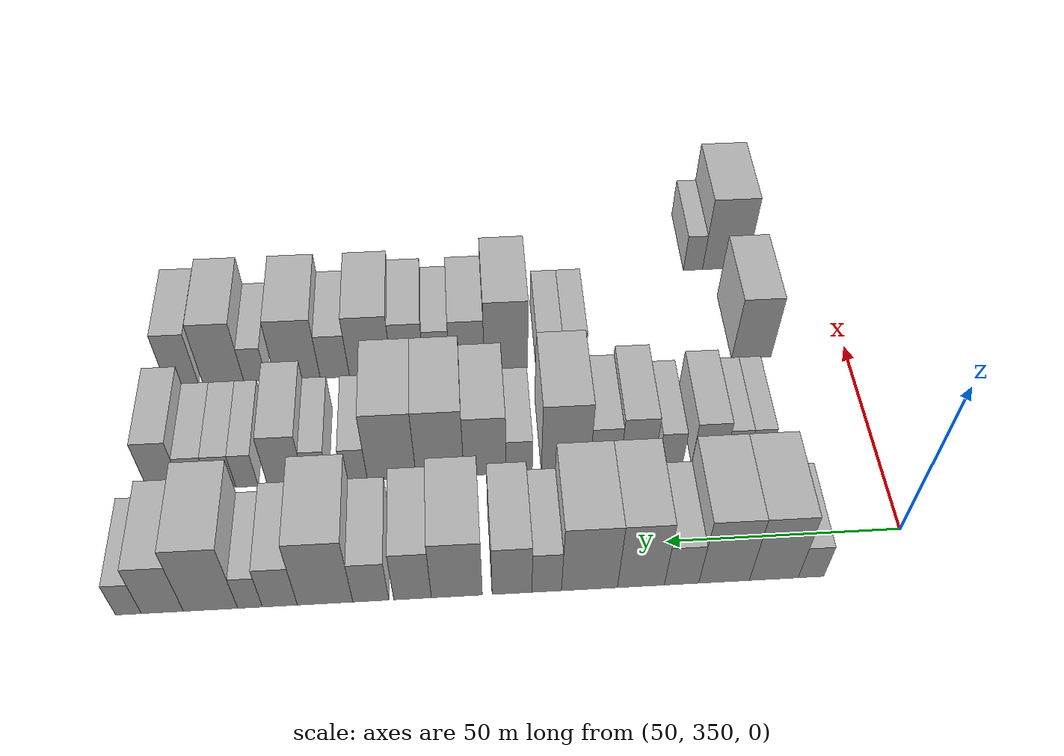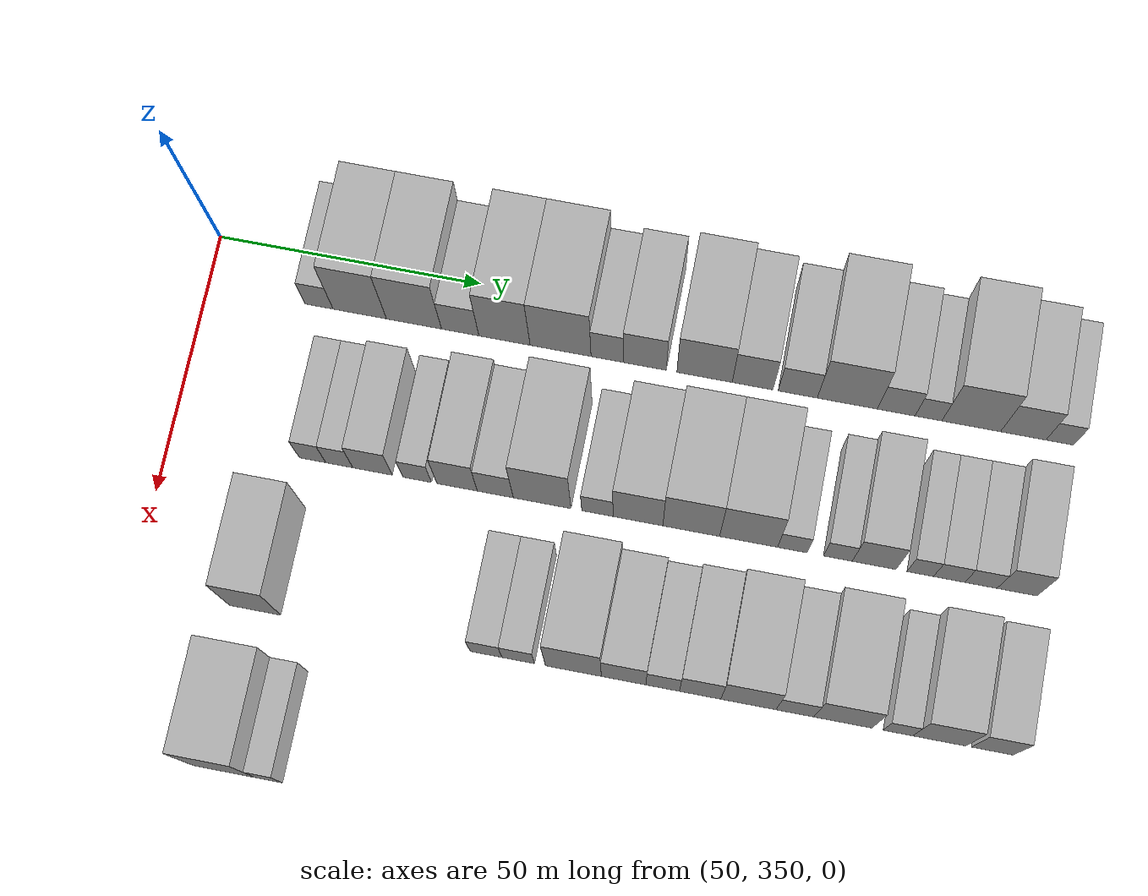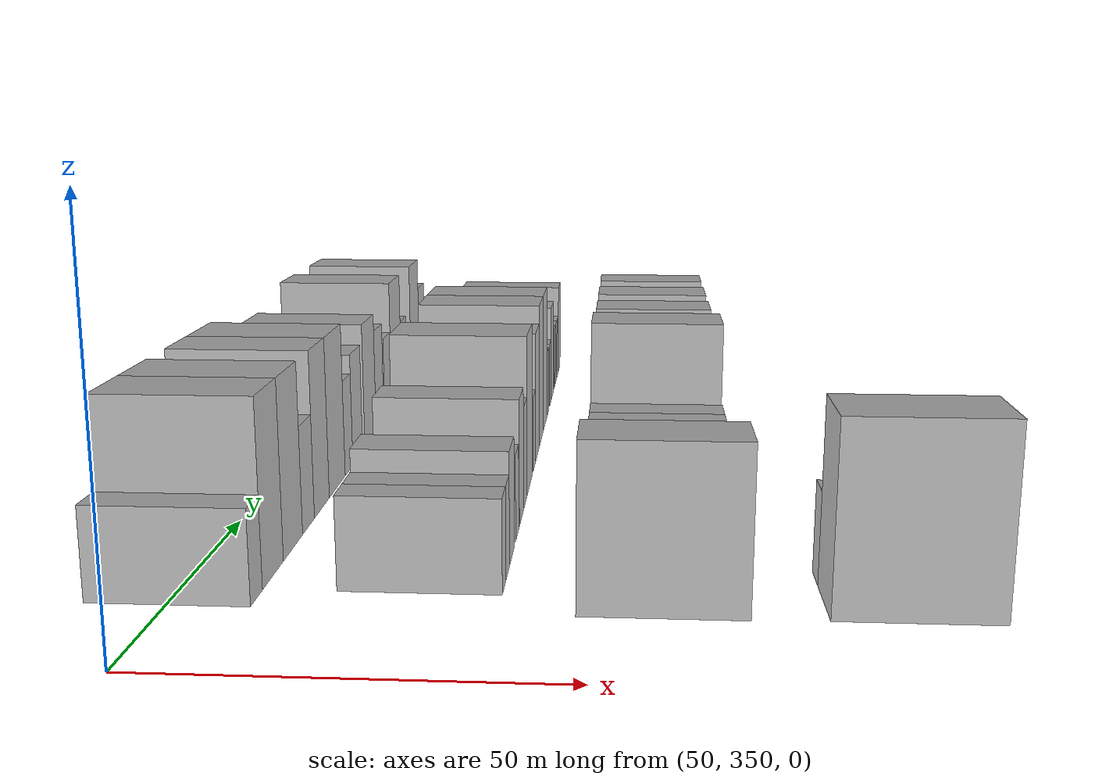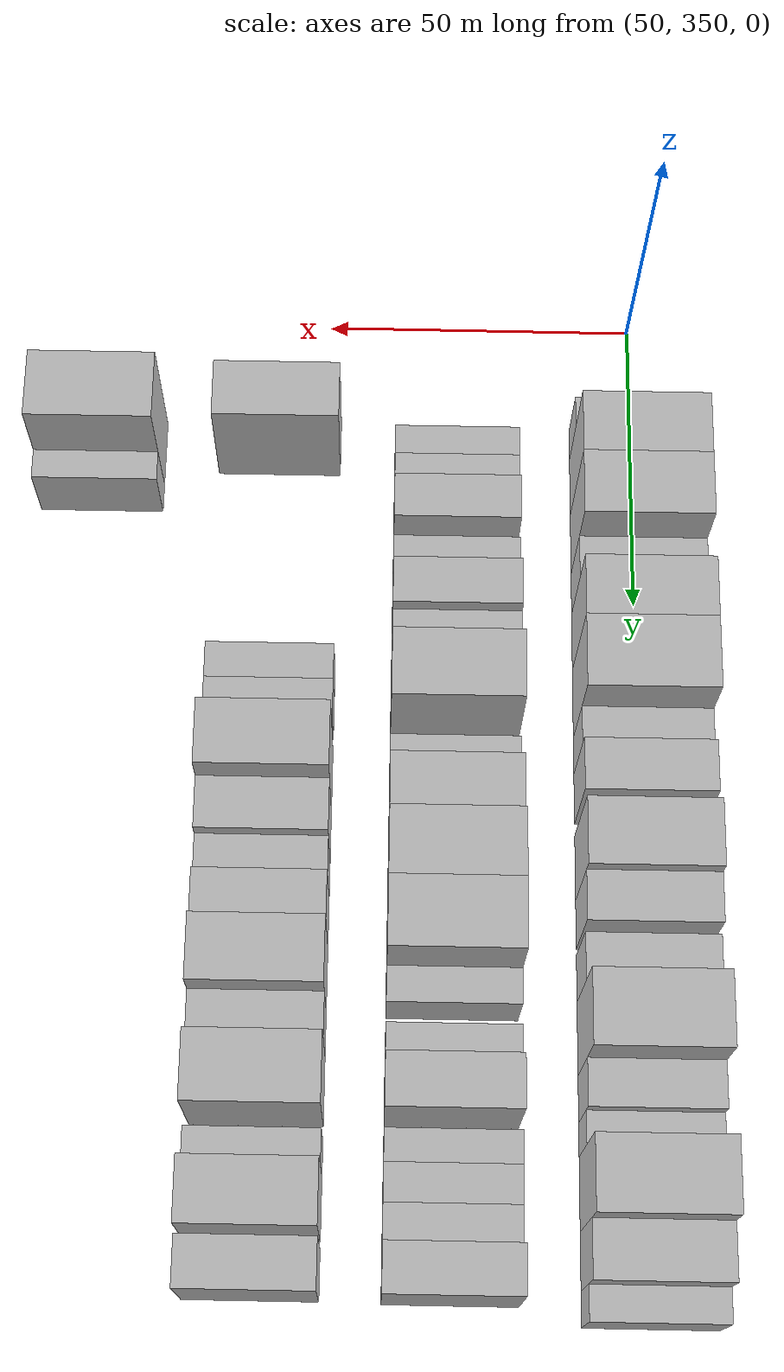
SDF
<sdf version="1.6">
 <world name="default">
  <model name="building_88">
   <static>1</static>
   <pose>50.0000 371.3423 0 0.000000 0.000000 0.000000</pose>
   <link name="link">
    <pose>0 0 6.00 0 0 0</pose>
    <collision name="collision"><geometry><box><size>20.0000 5.3375 12.0000</size></box></geometry></collision>
    <visual name="visual">
     <cast_shadows>0</cast_shadows>
     <geometry><box><size>20.0000 5.3375 12.0000</size></box></geometry>
     <material>
      <script>
       <uri>model://HANNAS_wall/materials/scripts</uri>
       <uri>model://HANNAS_wall/materials/textures</uri>
       <name>vrc/HANNAS_wall</name>
      </script>
     </material>
    </visual>
   </link>
  </model>
  <model name="building_89">
   <static>1</static>
   <pose>50.0000 379.1106 0 0.000000 0.000000 0.000000</pose>
   <link name="link">
    <pose>0 0 12.00 0 0 0</pose>
    <collision name="collision"><geometry><box><size>20.0000 10.1991 24.0000</size></box></geometry></collision>
    <visual name="visual">
     <cast_shadows>0</cast_shadows>
     <geometry><box><size>20.0000 10.1991 24.0000</size></box></geometry>
     <material>
      <script>
       <uri>model://HANNAS_wall/materials/scripts</uri>
       <uri>model://HANNAS_wall/materials/textures</uri>
       <name>vrc/HANNAS_wall</name>
      </script>
     </material>
    </visual>
   </link>
  </model>
  <model name="building_90">
   <static>1</static>
   <pose>50.0000 389.4498 0 0.000000 0.000000 0.000000</pose>
   <link name="link">
    <pose>0 0 12.00 0 0 0</pose>
    <collision name="collision"><geometry><box><size>20.0000 10.4793 24.0000</size></box></geometry></collision>
    <visual name="visual">
     <cast_shadows>0</cast_shadows>
     <geometry><box><size>20.0000 10.4793 24.0000</size></box></geometry>
     <material>
      <script>
       <uri>model://HANNAS_wall/materials/scripts</uri>
       <uri>model://HANNAS_wall/materials/textures</uri>
       <name>vrc/HANNAS_wall</name>
      </script>
     </material>
    </visual>
   </link>
  </model>
  <model name="building_91">
   <static>1</static>
   <pose>50.0000 398.2385 0 0.000000 0.000000 0.000000</pose>
   <link name="link">
    <pose>0 0 7.50 0 0 0</pose>
    <collision name="collision"><geometry><box><size>20.0000 7.0982 15.0000</size></box></geometry></collision>
    <visual name="visual">
     <cast_shadows>0</cast_shadows>
     <geometry><box><size>20.0000 7.0982 15.0000</size></box></geometry>
     <material>
      <script>
       <uri>model://HANNAS_wall/materials/scripts</uri>
       <uri>model://HANNAS_wall/materials/textures</uri>
       <name>vrc/HANNAS_wall</name>
      </script>
     </material>
    </visual>
   </link>
  </model>
  <model name="building_92">
   <static>1</static>
   <pose>50.0000 406.6398 0 0.000000 0.000000 0.000000</pose>
   <link name="link">
    <pose>0 0 12.00 0 0 0</pose>
    <collision name="collision"><geometry><box><size>20.0000 9.7044 24.0000</size></box></geometry></collision>
    <visual name="visual">
     <cast_shadows>0</cast_shadows>
     <geometry><box><size>20.0000 9.7044 24.0000</size></box></geometry>
     <material>
      <script>
       <uri>model://HANNAS_wall/materials/scripts</uri>
       <uri>model://HANNAS_wall/materials/textures</uri>
       <name>vrc/HANNAS_wall</name>
      </script>
     </material>
    </visual>
   </link>
  </model>
  <model name="building_93">
   <static>1</static>
   <pose>50.0000 417.2478 0 0.000000 0.000000 0.000000</pose>
   <link name="link">
    <pose>0 0 12.00 0 0 0</pose>
    <collision name="collision"><geometry><box><size>20.0000 11.5116 24.0000</size></box></geometry></collision>
    <visual name="visual">
     <cast_shadows>0</cast_shadows>
     <geometry><box><size>20.0000 11.5116 24.0000</size></box></geometry>
     <material>
      <script>
       <uri>model://HANNAS_wall/materials/scripts</uri>
       <uri>model://HANNAS_wall/materials/textures</uri>
       <name>vrc/HANNAS_wall</name>
      </script>
     </material>
    </visual>
   </link>
  </model>
  <model name="building_94">
   <static>1</static>
   <pose>50.0000 426.0330 0 0.000000 0.000000 0.000000</pose>
   <link name="link">
    <pose>0 0 7.50 0 0 0</pose>
    <collision name="collision"><geometry><box><size>20.0000 6.0588 15.0000</size></box></geometry></collision>
    <visual name="visual">
     <cast_shadows>0</cast_shadows>
     <geometry><box><size>20.0000 6.0588 15.0000</size></box></geometry>
     <material>
      <script>
       <uri>model://HANNAS_wall/materials/scripts</uri>
       <uri>model://HANNAS_wall/materials/textures</uri>
       <name>vrc/HANNAS_wall</name>
      </script>
     </material>
    </visual>
   </link>
  </model>
  <model name="building_95">
   <static>1</static>
   <pose>50.0000 433.1248 0 0.000000 0.000000 0.000000</pose>
   <link name="link">
    <pose>0 0 9.00 0 0 0</pose>
    <collision name="collision"><geometry><box><size>20.0000 8.1249 18.0000</size></box></geometry></collision>
    <visual name="visual">
     <cast_shadows>0</cast_shadows>
     <geometry><box><size>20.0000 8.1249 18.0000</size></box></geometry>
     <material>
      <script>
       <uri>model://HANNAS_wall/materials/scripts</uri>
       <uri>model://HANNAS_wall/materials/textures</uri>
       <name>vrc/HANNAS_wall</name>
      </script>
     </material>
    </visual>
   </link>
  </model>
  <model name="building_96">
   <static>1</static>
   <pose>50.0000 444.3819 0 0.000000 0.000000 0.000000</pose>
   <link name="link">
    <pose>0 0 10.50 0 0 0</pose>
    <collision name="collision"><geometry><box><size>20.0000 10.3893 21.0000</size></box></geometry></collision>
    <visual name="visual">
     <cast_shadows>0</cast_shadows>
     <geometry><box><size>20.0000 10.3893 21.0000</size></box></geometry>
     <material>
      <script>
       <uri>model://HANNAS_wall/materials/scripts</uri>
       <uri>model://HANNAS_wall/materials/textures</uri>
       <name>vrc/HANNAS_wall</name>
      </script>
     </material>
    </visual>
   </link>
  </model>
  <model name="building_97">
   <static>1</static>
   <pose>50.0000 453.3952 0 0.000000 0.000000 0.000000</pose>
   <link name="link">
    <pose>0 0 9.00 0 0 0</pose>
    <collision name="collision"><geometry><box><size>20.0000 7.6373 18.0000</size></box></geometry></collision>
    <visual name="visual">
     <cast_shadows>0</cast_shadows>
     <geometry><box><size>20.0000 7.6373 18.0000</size></box></geometry>
     <material>
      <script>
       <uri>model://HANNAS_wall/materials/scripts</uri>
       <uri>model://HANNAS_wall/materials/textures</uri>
       <name>vrc/HANNAS_wall</name>
      </script>
     </material>
    </visual>
   </link>
  </model>
  <model name="building_98">
   <static>1</static>
   <pose>50.0000 461.8619 0 0.000000 0.000000 0.000000</pose>
   <link name="link">
    <pose>0 0 7.50 0 0 0</pose>
    <collision name="collision"><geometry><box><size>20.0000 7.2961 15.0000</size></box></geometry></collision>
    <visual name="visual">
     <cast_shadows>0</cast_shadows>
     <geometry><box><size>20.0000 7.2961 15.0000</size></box></geometry>
     <material>
      <script>
       <uri>model://HANNAS_wall/materials/scripts</uri>
       <uri>model://HANNAS_wall/materials/textures</uri>
       <name>vrc/HANNAS_wall</name>
      </script>
     </material>
    </visual>
   </link>
  </model>
  <model name="building_99">
   <static>1</static>
   <pose>50.0000 471.1191 0 0.000000 0.000000 0.000000</pose>
   <link name="link">
    <pose>0 0 12.00 0 0 0</pose>
    <collision name="collision"><geometry><box><size>20.0000 11.2183 24.0000</size></box></geometry></collision>
    <visual name="visual">
     <cast_shadows>0</cast_shadows>
     <geometry><box><size>20.0000 11.2183 24.0000</size></box></geometry>
     <material>
      <script>
       <uri>model://HANNAS_wall/materials/scripts</uri>
       <uri>model://HANNAS_wall/materials/textures</uri>
       <name>vrc/HANNAS_wall</name>
      </script>
     </material>
    </visual>
   </link>
  </model>
  <model name="building_100">
   <static>1</static>
   <pose>50.0000 480.2473 0 0.000000 0.000000 0.000000</pose>
   <link name="link">
    <pose>0 0 7.50 0 0 0</pose>
    <collision name="collision"><geometry><box><size>20.0000 7.0383 15.0000</size></box></geometry></collision>
    <visual name="visual">
     <cast_shadows>0</cast_shadows>
     <geometry><box><size>20.0000 7.0383 15.0000</size></box></geometry>
     <material>
      <script>
       <uri>model://HANNAS_wall/materials/scripts</uri>
       <uri>model://HANNAS_wall/materials/textures</uri>
       <name>vrc/HANNAS_wall</name>
      </script>
     </material>
    </visual>
   </link>
  </model>
  <model name="building_101">
   <static>1</static>
   <pose>50.0000 486.2559 0 0.000000 0.000000 0.000000</pose>
   <link name="link">
    <pose>0 0 6.00 0 0 0</pose>
    <collision name="collision"><geometry><box><size>20.0000 4.9789 12.0000</size></box></geometry></collision>
    <visual name="visual">
     <cast_shadows>0</cast_shadows>
     <geometry><box><size>20.0000 4.9789 12.0000</size></box></geometry>
     <material>
      <script>
       <uri>model://HANNAS_wall/materials/scripts</uri>
       <uri>model://HANNAS_wall/materials/textures</uri>
       <name>vrc/HANNAS_wall</name>
      </script>
     </material>
    </visual>
   </link>
  </model>
  <model name="building_102">
   <static>1</static>
   <pose>50.0000 494.1924 0 0.000000 0.000000 0.000000</pose>
   <link name="link">
    <pose>0 0 12.00 0 0 0</pose>
    <collision name="collision"><geometry><box><size>20.0000 10.8940 24.0000</size></box></geometry></collision>
    <visual name="visual">
     <cast_shadows>0</cast_shadows>
     <geometry><box><size>20.0000 10.8940 24.0000</size></box></geometry>
     <material>
      <script>
       <uri>model://HANNAS_wall/materials/scripts</uri>
       <uri>model://HANNAS_wall/materials/textures</uri>
       <name>vrc/HANNAS_wall</name>
      </script>
     </material>
    </visual>
   </link>
  </model>
  <model name="building_103">
   <static>1</static>
   <pose>50.0000 503.8548 0 0.000000 0.000000 0.000000</pose>
   <link name="link">
    <pose>0 0 9.00 0 0 0</pose>
    <collision name="collision"><geometry><box><size>20.0000 8.4309 18.0000</size></box></geometry></collision>
    <visual name="visual">
     <cast_shadows>0</cast_shadows>
     <geometry><box><size>20.0000 8.4309 18.0000</size></box></geometry>
     <material>
      <script>
       <uri>model://HANNAS_wall/materials/scripts</uri>
       <uri>model://HANNAS_wall/materials/textures</uri>
       <name>vrc/HANNAS_wall</name>
      </script>
     </material>
    </visual>
   </link>
  </model>
  <model name="building_104">
   <static>1</static>
   <pose>50.0000 510.6367 0 0.000000 0.000000 0.000000</pose>
   <link name="link">
    <pose>0 0 6.00 0 0 0</pose>
    <collision name="collision"><geometry><box><size>20.0000 5.1329 12.0000</size></box></geometry></collision>
    <visual name="visual">
     <cast_shadows>0</cast_shadows>
     <geometry><box><size>20.0000 5.1329 12.0000</size></box></geometry>
     <material>
      <script>
       <uri>model://HANNAS_wall/materials/scripts</uri>
       <uri>model://HANNAS_wall/materials/textures</uri>
       <name>vrc/HANNAS_wall</name>
      </script>
     </material>
    </visual>
   </link>
  </model>
  <model name="building_204">
   <static>1</static>
   <pose>79.0000 376.7679 0 0.000000 0.000000 0.000000</pose>
   <link name="link">
    <pose>0 0 6.00 0 0 0</pose>
    <collision name="collision"><geometry><box><size>20.0000 4.9450 12.0000</size></box></geometry></collision>
    <visual name="visual">
     <cast_shadows>0</cast_shadows>
     <geometry><box><size>20.0000 4.9450 12.0000</size></box></geometry>
     <material>
      <script>
       <uri>model://HANNAS_wall/materials/scripts</uri>
       <uri>model://HANNAS_wall/materials/textures</uri>
       <name>vrc/HANNAS_wall</name>
      </script>
     </material>
    </visual>
   </link>
  </model>
  <model name="building_205">
   <static>1</static>
   <pose>79.0000 381.7801 0 0.000000 0.000000 0.000000</pose>
   <link name="link">
    <pose>0 0 6.00 0 0 0</pose>
    <collision name="collision"><geometry><box><size>20.0000 5.0794 12.0000</size></box></geometry></collision>
    <visual name="visual">
     <cast_shadows>0</cast_shadows>
     <geometry><box><size>20.0000 5.0794 12.0000</size></box></geometry>
     <material>
      <script>
       <uri>model://HANNAS_wall/materials/scripts</uri>
       <uri>model://HANNAS_wall/materials/textures</uri>
       <name>vrc/HANNAS_wall</name>
      </script>
     </material>
    </visual>
   </link>
  </model>
  <model name="building_206">
   <static>1</static>
   <pose>79.0000 387.9930 0 0.000000 0.000000 0.000000</pose>
   <link name="link">
    <pose>0 0 7.50 0 0 0</pose>
    <collision name="collision"><geometry><box><size>20.0000 7.3464 15.0000</size></box></geometry></collision>
    <visual name="visual">
     <cast_shadows>0</cast_shadows>
     <geometry><box><size>20.0000 7.3464 15.0000</size></box></geometry>
     <material>
      <script>
       <uri>model://HANNAS_wall/materials/scripts</uri>
       <uri>model://HANNAS_wall/materials/textures</uri>
       <name>vrc/HANNAS_wall</name>
      </script>
     </material>
    </visual>
   </link>
  </model>
  <model name="building_207">
   <static>1</static>
   <pose>79.0000 396.3459 0 0.000000 0.000000 0.000000</pose>
   <link name="link">
    <pose>0 0 6.00 0 0 0</pose>
    <collision name="collision"><geometry><box><size>20.0000 5.3593 12.0000</size></box></geometry></collision>
    <visual name="visual">
     <cast_shadows>0</cast_shadows>
     <geometry><box><size>20.0000 5.3593 12.0000</size></box></geometry>
     <material>
      <script>
       <uri>model://HANNAS_wall/materials/scripts</uri>
       <uri>model://HANNAS_wall/materials/textures</uri>
       <name>vrc/HANNAS_wall</name>
      </script>
     </material>
    </visual>
   </link>
  </model>
  <model name="building_208">
   <static>1</static>
   <pose>79.0000 403.7960 0 0.000000 0.000000 0.000000</pose>
   <link name="link">
    <pose>0 0 9.00 0 0 0</pose>
    <collision name="collision"><geometry><box><size>20.0000 7.5409 18.0000</size></box></geometry></collision>
    <visual name="visual">
     <cast_shadows>0</cast_shadows>
     <geometry><box><size>20.0000 7.5409 18.0000</size></box></geometry>
     <material>
      <script>
       <uri>model://HANNAS_wall/materials/scripts</uri>
       <uri>model://HANNAS_wall/materials/textures</uri>
       <name>vrc/HANNAS_wall</name>
      </script>
     </material>
    </visual>
   </link>
  </model>
  <model name="building_209">
   <static>1</static>
   <pose>79.0000 410.9110 0 0.000000 0.000000 0.000000</pose>
   <link name="link">
    <pose>0 0 7.50 0 0 0</pose>
    <collision name="collision"><geometry><box><size>20.0000 6.6892 15.0000</size></box></geometry></collision>
    <visual name="visual">
     <cast_shadows>0</cast_shadows>
     <geometry><box><size>20.0000 6.6892 15.0000</size></box></geometry>
     <material>
      <script>
       <uri>model://HANNAS_wall/materials/scripts</uri>
       <uri>model://HANNAS_wall/materials/textures</uri>
       <name>vrc/HANNAS_wall</name>
      </script>
     </material>
    </visual>
   </link>
  </model>
  <model name="building_210">
   <static>1</static>
   <pose>79.0000 419.6034 0 0.000000 0.000000 0.000000</pose>
   <link name="link">
    <pose>0 0 12.00 0 0 0</pose>
    <collision name="collision"><geometry><box><size>20.0000 10.6956 24.0000</size></box></geometry></collision>
    <visual name="visual">
     <cast_shadows>0</cast_shadows>
     <geometry><box><size>20.0000 10.6956 24.0000</size></box></geometry>
     <material>
      <script>
       <uri>model://HANNAS_wall/materials/scripts</uri>
       <uri>model://HANNAS_wall/materials/textures</uri>
       <name>vrc/HANNAS_wall</name>
      </script>
     </material>
    </visual>
   </link>
  </model>
  <model name="building_211">
   <static>1</static>
   <pose>79.0000 429.8473 0 0.000000 0.000000 0.000000</pose>
   <link name="link">
    <pose>0 0 6.00 0 0 0</pose>
    <collision name="collision"><geometry><box><size>20.0000 5.7922 12.0000</size></box></geometry></collision>
    <visual name="visual">
     <cast_shadows>0</cast_shadows>
     <geometry><box><size>20.0000 5.7922 12.0000</size></box></geometry>
     <material>
      <script>
       <uri>model://HANNAS_wall/materials/scripts</uri>
       <uri>model://HANNAS_wall/materials/textures</uri>
       <name>vrc/HANNAS_wall</name>
      </script>
     </material>
    </visual>
   </link>
  </model>
  <model name="building_212">
   <static>1</static>
   <pose>79.0000 437.3501 0 0.000000 0.000000 0.000000</pose>
   <link name="link">
    <pose>0 0 10.50 0 0 0</pose>
    <collision name="collision"><geometry><box><size>20.0000 9.2133 21.0000</size></box></geometry></collision>
    <visual name="visual">
     <cast_shadows>0</cast_shadows>
     <geometry><box><size>20.0000 9.2133 21.0000</size></box></geometry>
     <material>
      <script>
       <uri>model://HANNAS_wall/materials/scripts</uri>
       <uri>model://HANNAS_wall/materials/textures</uri>
       <name>vrc/HANNAS_wall</name>
      </script>
     </material>
    </visual>
   </link>
  </model>
  <model name="building_213">
   <static>1</static>
   <pose>79.0000 447.1812 0 0.000000 0.000000 0.000000</pose>
   <link name="link">
    <pose>0 0 12.00 0 0 0</pose>
    <collision name="collision"><geometry><box><size>20.0000 10.4488 24.0000</size></box></geometry></collision>
    <visual name="visual">
     <cast_shadows>0</cast_shadows>
     <geometry><box><size>20.0000 10.4488 24.0000</size></box></geometry>
     <material>
      <script>
       <uri>model://HANNAS_wall/materials/scripts</uri>
       <uri>model://HANNAS_wall/materials/textures</uri>
       <name>vrc/HANNAS_wall</name>
      </script>
     </material>
    </visual>
   </link>
  </model>
  <model name="building_214">
   <static>1</static>
   <pose>79.0000 457.7362 0 0.000000 0.000000 0.000000</pose>
   <link name="link">
    <pose>0 0 12.00 0 0 0</pose>
    <collision name="collision"><geometry><box><size>20.0000 10.6613 24.0000</size></box></geometry></collision>
    <visual name="visual">
     <cast_shadows>0</cast_shadows>
     <geometry><box><size>20.0000 10.6613 24.0000</size></box></geometry>
     <material>
      <script>
       <uri>model://HANNAS_wall/materials/scripts</uri>
       <uri>model://HANNAS_wall/materials/textures</uri>
       <name>vrc/HANNAS_wall</name>
      </script>
     </material>
    </visual>
   </link>
  </model>
  <model name="building_215">
   <static>1</static>
   <pose>79.0000 465.7771 0 0.000000 0.000000 0.000000</pose>
   <link name="link">
    <pose>0 0 6.00 0 0 0</pose>
    <collision name="collision"><geometry><box><size>20.0000 5.4204 12.0000</size></box></geometry></collision>
    <visual name="visual">
     <cast_shadows>0</cast_shadows>
     <geometry><box><size>20.0000 5.4204 12.0000</size></box></geometry>
     <material>
      <script>
       <uri>model://HANNAS_wall/materials/scripts</uri>
       <uri>model://HANNAS_wall/materials/textures</uri>
       <name>vrc/HANNAS_wall</name>
      </script>
     </material>
    </visual>
   </link>
  </model>
  <model name="building_216">
   <static>1</static>
   <pose>79.0000 474.1257 0 0.000000 0.000000 0.000000</pose>
   <link name="link">
    <pose>0 0 6.00 0 0 0</pose>
    <collision name="collision"><geometry><box><size>20.0000 5.2768 12.0000</size></box></geometry></collision>
    <visual name="visual">
     <cast_shadows>0</cast_shadows>
     <geometry><box><size>20.0000 5.2768 12.0000</size></box></geometry>
     <material>
      <script>
       <uri>model://HANNAS_wall/materials/scripts</uri>
       <uri>model://HANNAS_wall/materials/textures</uri>
       <name>vrc/HANNAS_wall</name>
      </script>
     </material>
    </visual>
   </link>
  </model>
  <model name="building_217">
   <static>1</static>
   <pose>79.0000 480.7714 0 0.000000 0.000000 0.000000</pose>
   <link name="link">
    <pose>0 0 9.00 0 0 0</pose>
    <collision name="collision"><geometry><box><size>20.0000 8.0147 18.0000</size></box></geometry></collision>
    <visual name="visual">
     <cast_shadows>0</cast_shadows>
     <geometry><box><size>20.0000 8.0147 18.0000</size></box></geometry>
     <material>
      <script>
       <uri>model://HANNAS_wall/materials/scripts</uri>
       <uri>model://HANNAS_wall/materials/textures</uri>
       <name>vrc/HANNAS_wall</name>
      </script>
     </material>
    </visual>
   </link>
  </model>
  <model name="building_218">
   <static>1</static>
   <pose>79.0000 489.2056 0 0.000000 0.000000 0.000000</pose>
   <link name="link">
    <pose>0 0 6.00 0 0 0</pose>
    <collision name="collision"><geometry><box><size>20.0000 4.8536 12.0000</size></box></geometry></collision>
    <visual name="visual">
     <cast_shadows>0</cast_shadows>
     <geometry><box><size>20.0000 4.8536 12.0000</size></box></geometry>
     <material>
      <script>
       <uri>model://HANNAS_wall/materials/scripts</uri>
       <uri>model://HANNAS_wall/materials/textures</uri>
       <name>vrc/HANNAS_wall</name>
      </script>
     </material>
    </visual>
   </link>
  </model>
  <model name="building_219">
   <static>1</static>
   <pose>79.0000 494.4707 0 0.000000 0.000000 0.000000</pose>
   <link name="link">
    <pose>0 0 6.00 0 0 0</pose>
    <collision name="collision"><geometry><box><size>20.0000 5.6768 12.0000</size></box></geometry></collision>
    <visual name="visual">
     <cast_shadows>0</cast_shadows>
     <geometry><box><size>20.0000 5.6768 12.0000</size></box></geometry>
     <material>
      <script>
       <uri>model://HANNAS_wall/materials/scripts</uri>
       <uri>model://HANNAS_wall/materials/textures</uri>
       <name>vrc/HANNAS_wall</name>
      </script>
     </material>
    </visual>
   </link>
  </model>
  <model name="building_220">
   <static>1</static>
   <pose>79.0000 500.2598 0 0.000000 0.000000 0.000000</pose>
   <link name="link">
    <pose>0 0 6.00 0 0 0</pose>
    <collision name="collision"><geometry><box><size>20.0000 5.9014 12.0000</size></box></geometry></collision>
    <visual name="visual">
     <cast_shadows>0</cast_shadows>
     <geometry><box><size>20.0000 5.9014 12.0000</size></box></geometry>
     <material>
      <script>
       <uri>model://HANNAS_wall/materials/scripts</uri>
       <uri>model://HANNAS_wall/materials/textures</uri>
       <name>vrc/HANNAS_wall</name>
      </script>
     </material>
    </visual>
   </link>
  </model>
  <model name="building_221">
   <static>1</static>
   <pose>79.0000 506.8449 0 0.000000 0.000000 0.000000</pose>
   <link name="link">
    <pose>0 0 9.00 0 0 0</pose>
    <collision name="collision"><geometry><box><size>20.0000 7.2688 18.0000</size></box></geometry></collision>
    <visual name="visual">
     <cast_shadows>0</cast_shadows>
     <geometry><box><size>20.0000 7.2688 18.0000</size></box></geometry>
     <material>
      <script>
       <uri>model://HANNAS_wall/materials/scripts</uri>
       <uri>model://HANNAS_wall/materials/textures</uri>
       <name>vrc/HANNAS_wall</name>
      </script>
     </material>
    </visual>
   </link>
  </model>
  <model name="building_322">
   <static>1</static>
   <pose>108.0000 372.8340 0 0.000000 0.000000 0.000000</pose>
   <link name="link">
    <pose>0 0 10.50 0 0 0</pose>
    <collision name="collision"><geometry><box><size>20.0000 9.4358 21.0000</size></box></geometry></collision>
    <visual name="visual">
     <cast_shadows>0</cast_shadows>
     <geometry><box><size>20.0000 9.4358 21.0000</size></box></geometry>
     <material>
      <script>
       <uri>model://HANNAS_wall/materials/scripts</uri>
       <uri>model://HANNAS_wall/materials/textures</uri>
       <name>vrc/HANNAS_wall</name>
      </script>
     </material>
    </visual>
   </link>
  </model>
  <model name="building_323">
   <static>1</static>
   <pose>108.0000 415.2175 0 0.000000 0.000000 0.000000</pose>
   <link name="link">
    <pose>0 0 6.00 0 0 0</pose>
    <collision name="collision"><geometry><box><size>20.0000 5.7771 12.0000</size></box></geometry></collision>
    <visual name="visual">
     <cast_shadows>0</cast_shadows>
     <geometry><box><size>20.0000 5.7771 12.0000</size></box></geometry>
     <material>
      <script>
       <uri>model://HANNAS_wall/materials/scripts</uri>
       <uri>model://HANNAS_wall/materials/textures</uri>
       <name>vrc/HANNAS_wall</name>
      </script>
     </material>
    </visual>
   </link>
  </model>
  <model name="building_324">
   <static>1</static>
   <pose>108.0000 421.0798 0 0.000000 0.000000 0.000000</pose>
   <link name="link">
    <pose>0 0 6.00 0 0 0</pose>
    <collision name="collision"><geometry><box><size>20.0000 5.9476 12.0000</size></box></geometry></collision>
    <visual name="visual">
     <cast_shadows>0</cast_shadows>
     <geometry><box><size>20.0000 5.9476 12.0000</size></box></geometry>
     <material>
      <script>
       <uri>model://HANNAS_wall/materials/scripts</uri>
       <uri>model://HANNAS_wall/materials/textures</uri>
       <name>vrc/HANNAS_wall</name>
      </script>
     </material>
    </visual>
   </link>
  </model>
  <model name="building_325">
   <static>1</static>
   <pose>108.0000 431.1277 0 0.000000 0.000000 0.000000</pose>
   <link name="link">
    <pose>0 0 12.00 0 0 0</pose>
    <collision name="collision"><geometry><box><size>20.0000 10.1482 24.0000</size></box></geometry></collision>
    <visual name="visual">
     <cast_shadows>0</cast_shadows>
     <geometry><box><size>20.0000 10.1482 24.0000</size></box></geometry>
     <material>
      <script>
       <uri>model://HANNAS_wall/materials/scripts</uri>
       <uri>model://HANNAS_wall/materials/textures</uri>
       <name>vrc/HANNAS_wall</name>
      </script>
     </material>
    </visual>
   </link>
  </model>
  <model name="building_326">
   <static>1</static>
   <pose>108.0000 440.2389 0 0.000000 0.000000 0.000000</pose>
   <link name="link">
    <pose>0 0 9.00 0 0 0</pose>
    <collision name="collision"><geometry><box><size>20.0000 8.0742 18.0000</size></box></geometry></collision>
    <visual name="visual">
     <cast_shadows>0</cast_shadows>
     <geometry><box><size>20.0000 8.0742 18.0000</size></box></geometry>
     <material>
      <script>
       <uri>model://HANNAS_wall/materials/scripts</uri>
       <uri>model://HANNAS_wall/materials/textures</uri>
       <name>vrc/HANNAS_wall</name>
      </script>
     </material>
    </visual>
   </link>
  </model>
  <model name="building_327">
   <static>1</static>
   <pose>108.0000 447.2976 0 0.000000 0.000000 0.000000</pose>
   <link name="link">
    <pose>0 0 7.50 0 0 0</pose>
    <collision name="collision"><geometry><box><size>20.0000 6.0432 15.0000</size></box></geometry></collision>
    <visual name="visual">
     <cast_shadows>0</cast_shadows>
     <geometry><box><size>20.0000 6.0432 15.0000</size></box></geometry>
     <material>
      <script>
       <uri>model://HANNAS_wall/materials/scripts</uri>
       <uri>model://HANNAS_wall/materials/textures</uri>
       <name>vrc/HANNAS_wall</name>
      </script>
     </material>
    </visual>
   </link>
  </model>
  <model name="building_328">
   <static>1</static>
   <pose>108.0000 454.0712 0 0.000000 0.000000 0.000000</pose>
   <link name="link">
    <pose>0 0 9.00 0 0 0</pose>
    <collision name="collision"><geometry><box><size>20.0000 7.5042 18.0000</size></box></geometry></collision>
    <visual name="visual">
     <cast_shadows>0</cast_shadows>
     <geometry><box><size>20.0000 7.5042 18.0000</size></box></geometry>
     <material>
      <script>
       <uri>model://HANNAS_wall/materials/scripts</uri>
       <uri>model://HANNAS_wall/materials/textures</uri>
       <name>vrc/HANNAS_wall</name>
      </script>
     </material>
    </visual>
   </link>
  </model>
  <model name="building_329">
   <static>1</static>
   <pose>108.0000 462.8044 0 0.000000 0.000000 0.000000</pose>
   <link name="link">
    <pose>0 0 10.50 0 0 0</pose>
    <collision name="collision"><geometry><box><size>20.0000 9.9621 21.0000</size></box></geometry></collision>
    <visual name="visual">
     <cast_shadows>0</cast_shadows>
     <geometry><box><size>20.0000 9.9621 21.0000</size></box></geometry>
     <material>
      <script>
       <uri>model://HANNAS_wall/materials/scripts</uri>
       <uri>model://HANNAS_wall/materials/textures</uri>
       <name>vrc/HANNAS_wall</name>
      </script>
     </material>
    </visual>
   </link>
  </model>
  <model name="building_330">
   <static>1</static>
   <pose>108.0000 471.1962 0 0.000000 0.000000 0.000000</pose>
   <link name="link">
    <pose>0 0 7.50 0 0 0</pose>
    <collision name="collision"><geometry><box><size>20.0000 6.8214 15.0000</size></box></geometry></collision>
    <visual name="visual">
     <cast_shadows>0</cast_shadows>
     <geometry><box><size>20.0000 6.8214 15.0000</size></box></geometry>
     <material>
      <script>
       <uri>model://HANNAS_wall/materials/scripts</uri>
       <uri>model://HANNAS_wall/materials/textures</uri>
       <name>vrc/HANNAS_wall</name>
      </script>
     </material>
    </visual>
   </link>
  </model>
  <model name="building_331">
   <static>1</static>
   <pose>108.0000 479.8264 0 0.000000 0.000000 0.000000</pose>
   <link name="link">
    <pose>0 0 10.50 0 0 0</pose>
    <collision name="collision"><geometry><box><size>20.0000 10.4391 21.0000</size></box></geometry></collision>
    <visual name="visual">
     <cast_shadows>0</cast_shadows>
     <geometry><box><size>20.0000 10.4391 21.0000</size></box></geometry>
     <material>
      <script>
       <uri>model://HANNAS_wall/materials/scripts</uri>
       <uri>model://HANNAS_wall/materials/textures</uri>
       <name>vrc/HANNAS_wall</name>
      </script>
     </material>
    </visual>
   </link>
  </model>
  <model name="building_332">
   <static>1</static>
   <pose>108.0000 489.6988 0 0.000000 0.000000 0.000000</pose>
   <link name="link">
    <pose>0 0 6.00 0 0 0</pose>
    <collision name="collision"><geometry><box><size>20.0000 5.3056 12.0000</size></box></geometry></collision>
    <visual name="visual">
     <cast_shadows>0</cast_shadows>
     <geometry><box><size>20.0000 5.3056 12.0000</size></box></geometry>
     <material>
      <script>
       <uri>model://HANNAS_wall/materials/scripts</uri>
       <uri>model://HANNAS_wall/materials/textures</uri>
       <name>vrc/HANNAS_wall</name>
      </script>
     </material>
    </visual>
   </link>
  </model>
  <model name="building_333">
   <static>1</static>
   <pose>108.0000 497.1060 0 0.000000 0.000000 0.000000</pose>
   <link name="link">
    <pose>0 0 10.50 0 0 0</pose>
    <collision name="collision"><geometry><box><size>20.0000 9.5088 21.0000</size></box></geometry></collision>
    <visual name="visual">
     <cast_shadows>0</cast_shadows>
     <geometry><box><size>20.0000 9.5088 21.0000</size></box></geometry>
     <material>
      <script>
       <uri>model://HANNAS_wall/materials/scripts</uri>
       <uri>model://HANNAS_wall/materials/textures</uri>
       <name>vrc/HANNAS_wall</name>
      </script>
     </material>
    </visual>
   </link>
  </model>
  <model name="building_334">
   <static>1</static>
   <pose>108.0000 506.5781 0 0.000000 0.000000 0.000000</pose>
   <link name="link">
    <pose>0 0 9.00 0 0 0</pose>
    <collision name="collision"><geometry><box><size>20.0000 7.4354 18.0000</size></box></geometry></collision>
    <visual name="visual">
     <cast_shadows>0</cast_shadows>
     <geometry><box><size>20.0000 7.4354 18.0000</size></box></geometry>
     <material>
      <script>
       <uri>model://HANNAS_wall/materials/scripts</uri>
       <uri>model://HANNAS_wall/materials/textures</uri>
       <name>vrc/HANNAS_wall</name>
      </script>
     </material>
    </visual>
   </link>
  </model>
  <model name="building_434">
   <static>1</static>
   <pose>137.0000 374.1560 0 0.000000 0.000000 0.000000</pose>
   <link name="link">
    <pose>0 0 12.00 0 0 0</pose>
    <collision name="collision"><geometry><box><size>20.0000 11.2473 24.0000</size></box></geometry></collision>
    <visual name="visual">
     <cast_shadows>0</cast_shadows>
     <geometry><box><size>20.0000 11.2473 24.0000</size></box></geometry>
     <material>
      <script>
       <uri>model://HANNAS_wall/materials/scripts</uri>
       <uri>model://HANNAS_wall/materials/textures</uri>
       <name>vrc/HANNAS_wall</name>
      </script>
     </material>
    </visual>
   </link>
  </model>
  <model name="building_435">
   <static>1</static>
   <pose>137.0000 382.2147 0 0.000000 0.000000 0.000000</pose>
   <link name="link">
    <pose>0 0 6.00 0 0 0</pose>
    <collision name="collision"><geometry><box><size>20.0000 4.8701 12.0000</size></box></geometry></collision>
    <visual name="visual">
     <cast_shadows>0</cast_shadows>
     <geometry><box><size>20.0000 4.8701 12.0000</size></box></geometry>
     <material>
      <script>
       <uri>model://HANNAS_wall/materials/scripts</uri>
       <uri>model://HANNAS_wall/materials/textures</uri>
       <name>vrc/HANNAS_wall</name>
      </script>
     </material>
    </visual>
   </link>
  </model>
 </world>
</sdf>
